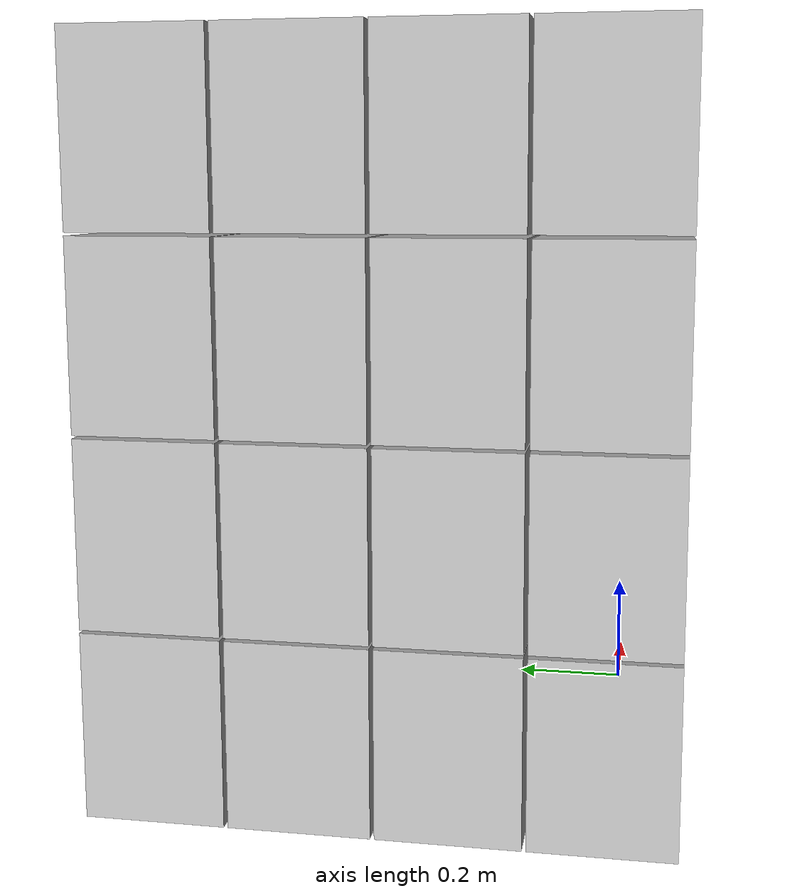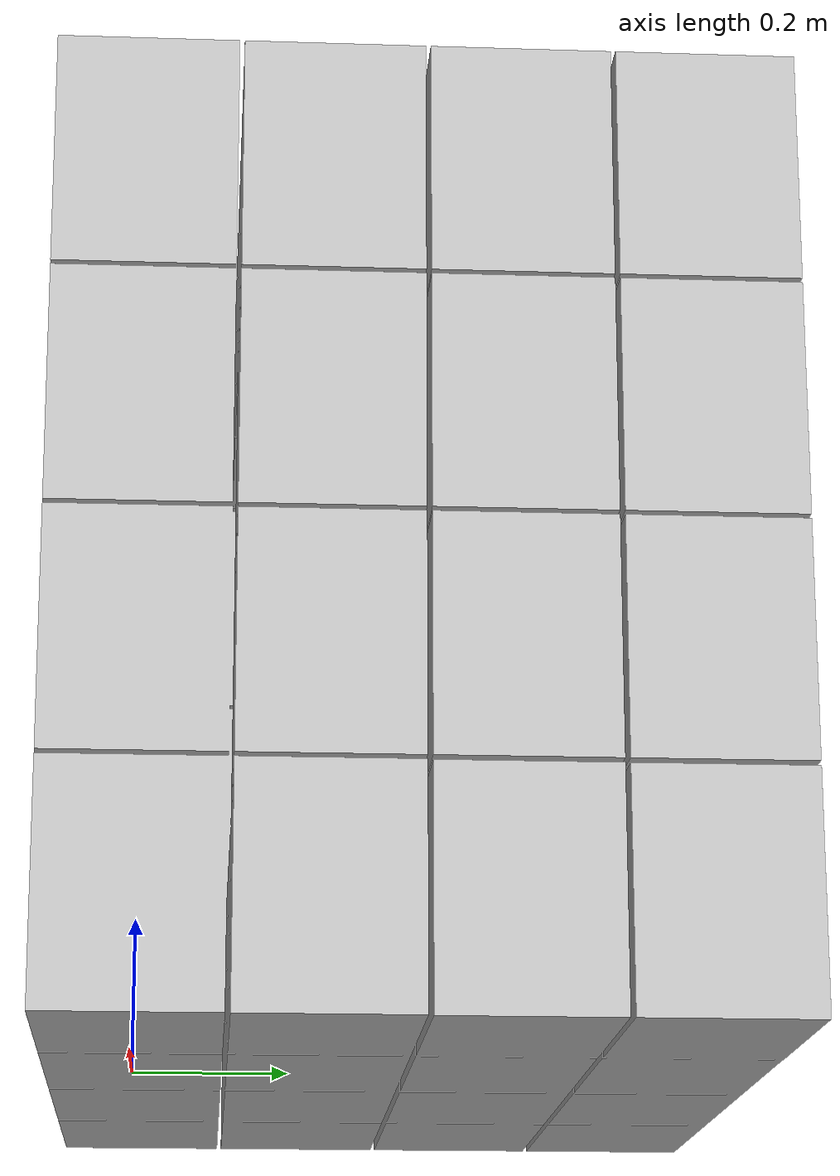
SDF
<?xml version="1.0" ?>
<sdf version="1.5">
  <model name="red_box">

    <pose>0 0 0  0 0 0</pose>

    <static>true</static>
    <link name="link">
      <inertial>
        <mass>783.8076</mass>
        <inertia>
          <ixx>1</ixx>
          <ixy>0</ixy>
          <ixz>0</ixz>
          <iyy>1</iyy>
          <iyz>0</iyz>
          <izz>1</izz>
        </inertia>
      </inertial>

      <collision name="collision">
	    <pose>0 0 0  0 0 0</pose>
        <geometry>
          <mesh>
            <uri>model://red_box/meshes/red_box_stack.dae</uri>
          </mesh>
        </geometry>
      </collision>

      <visual name="visual">
        <geometry>
          <mesh>
            <uri>model://red_box/meshes/red_box_stack.dae</uri>
          </mesh>
        </geometry>
      </visual>
    </link>
  </model>
</sdf>
